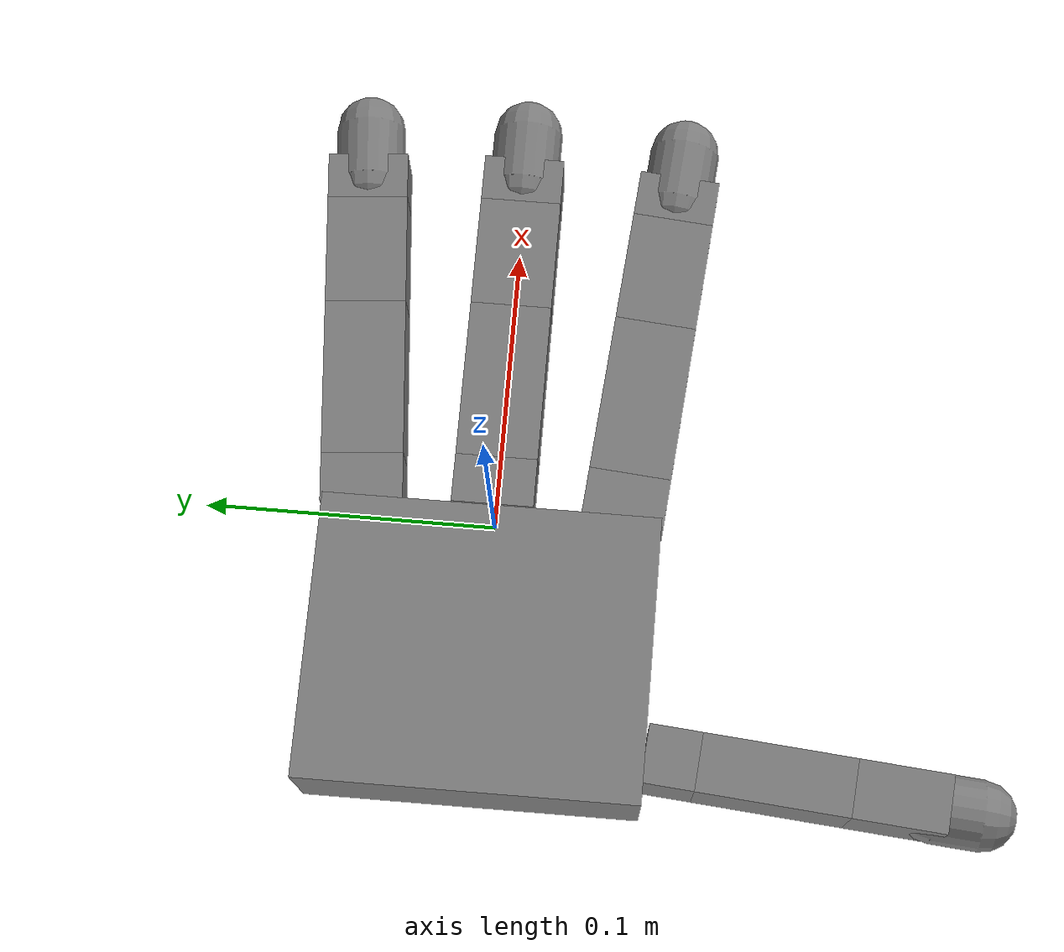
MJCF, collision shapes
<mujoco model="allegro_right">

  <compiler angle="radian" meshdir="../stls" texturedir="../textures"/>

  <default>
    <default class="allegro_right">
      <joint axis="0 1 0" damping=".1"/>
      <position kp="1"/>
      <geom density="800"/>

      <default class="visual">
        <geom type="mesh" contype="0" conaffinity="0" group="2" material="black"/>
        <default class="palm_visual">
          <geom mesh="base_link"/>
        </default>
        <default class="base_visual">
          <geom mesh="link_0.0"/>
        </default>
        <default class="proximal_visual">
          <geom mesh="link_1.0"/>
        </default>
        <default class="medial_visual">
          <geom mesh="link_2.0"/>
        </default>
        <default class="distal_visual">
          <geom mesh="link_3.0"/>
        </default>
        <default class="fingertip_visual">
          <geom pos="0 0 0.0267" material="white" mesh="link_3.0_tip"/>
        </default>
        <default class="thumbtip_visual">
          <geom pos="0 0 0.0423" material="white" mesh="link_15.0_tip"/>
        </default>
      </default>

      <default class="collision">
        <geom group="3" type="box" mass="0"/>
        <default class="palm_collision">
          <geom size="0.0204 0.0565 0.0475" pos="-0.0093 0 -0.0475"/>
        </default>
        <default class="base_collision">
          <geom size="0.0098 0.01375 0.0082" pos="0 0 0.0082"/>
          <default class="thumb_base_collision">
            <geom size="0.0179 0.017 0.02275" pos="-0.0179 0.009 0.0145"/>
          </default>
        </default>
        <default class="proximal_collision">
          <geom size="0.0098 0.01375 0.027" pos="0 0 0.027"/>
          <default class="thumb_proximal_collision">
            <geom size="0.0098 0.01375 0.00885" pos="0 0 0.00885"/>
          </default>
        </default>
        <default class="medial_collision">
          <geom size="0.0098 0.01375 0.0192" pos="0 0 0.0192"/>
          <default class="thumb_medial_collision">
            <geom size="0.0098 0.01375 0.0257" pos="0 0 0.0257"/>
          </default>
        </default>
        <default class="distal_collision">
          <geom size="0.0098 0.01375 0.008" pos="0 0 0.008"/>
          <default class="thumb_distal_collision">
            <geom size="0.0098 0.01375 0.0157" pos="0 0 0.0157"/>
          </default>
        </default>
        <default class="fingertip_collision">
          <geom type="capsule" size="0.012 0.01" pos="0 0 0.019"/>
          <default class="thumbtip_collision">
            <geom type="capsule" size="0.012 0.008" pos="0 0 0.035"/>
          </default>
        </default>
      </default>

      <default class="base">
        <joint axis="0 0 1" range="-0.47 0.47"/>
        <position ctrlrange="-0.47 0.47"/>
      </default>
      <default class="proximal">
        <joint range="-0.196 1.61"/>
        <position ctrlrange="-0.196 1.61"/>
      </default>
      <default class="medial">
        <joint range="-0.174 1.709"/>
        <position ctrlrange="-0.174 1.709"/>
      </default>
      <default class="distal">
        <joint range="-0.227 1.618"/>
        <position ctrlrange="-0.227 1.618"/>
      </default>
      <default class="thumb_base">
        <joint axis="-1 0 0" range="0.263 1.396"/>
        <position ctrlrange="0.263 1.396"/>
      </default>
      <default class="thumb_proximal">
        <joint axis="0 0 1" range="-0.105 1.163"/>
        <position ctrlrange="-0.105 1.163"/>
      </default>
      <default class="thumb_medial">
        <joint range="-0.189 1.644"/>
        <position ctrlrange="-0.189 1.644"/>
      </default>
      <default class="thumb_distal">
        <joint range="-0.162 1.719"/>
        <position ctrlrange="-0.162 1.719"/>
      </default>
    </default>
    <default class="touch">
        <site type="box" size="0.005 0.004 0.013" pos="0.01 -0.004 0.047" rgba="0.5 0.7 0.5 1"/>
    </default>
  </default>

  <asset>
    <material name="black" rgba="0.2 0.2 0.2 1"/>
    <material name="white" rgba="0.9 0.9 0.9 1"/>

    <mesh file="base_link.stl"/>
    <mesh file="link_0.0.stl"/>
    <mesh file="link_1.0.stl"/>
    <mesh file="link_2.0.stl"/>
    <mesh file="link_3.0.stl"/>
    <mesh file="link_3.0_tip.stl"/>
    <mesh file="link_12.0_right.stl"/>
    <mesh file="link_13.0.stl"/>
    <mesh file="link_14.0.stl"/>
    <mesh file="link_15.0.stl"/>
    <mesh file="link_15.0_tip.stl"/>
  </asset>

  <worldbody>
    <body name="palm" quat="0 1 0 1" childclass="allegro_right" pos="0 0 0.02" euler="1.55 0 0">
      <inertial mass="0.4154" pos="0 0 0.0475" diaginertia="1e-4 1e-4 1e-4"/>
      <joint name="robot:hand" type="slide" pos="0 0 0" axis="0 1 0" range="0 0.5" limited="true" damping="0.5" armature="0.005"></joint>
      <geom class="palm_visual" mesh="base_link"/>
      <geom class="palm_collision"/>
      <!-- First finger -->
      <body name="ff_base" pos="0 0.0435 -0.001542" quat="0.999048 -0.0436194 0 0">
        <joint name="ffj0" class="base"/>
        <geom class="base_visual"/>
        <geom class="base_collision" name="g111"/>
        <body name="ff_proximal" pos="0 0 0.0164">
          <joint name="ffj1" class="proximal"/>
          <geom class="proximal_visual"/>
          <geom class="proximal_collision" name="g112"/>
          <body name="ff_medial" pos="0 0 0.054">
            <joint name="ffj2" class="medial"/>
            <geom class="medial_visual"/>
            <geom class="medial_collision" name="g113"/>
            <body name="ff_distal" pos="0 0 0.0384">
              <joint name="ffj3" class="distal"/>
              <geom class="distal_visual"/>
              <geom class="distal_collision" name="g114"/>
              <body name="ff_tip">
                <geom class="fingertip_visual"/>
                <geom class="fingertip_collision" name="g115"/>
              </body>
            </body>
          </body>
        </body>
      </body>
      <!-- Middle finger -->
      <body name="mf_base" pos="0 0 0.0007">
        <joint name="mfj0" class="base"/>
        <geom class="base_visual"/>
        <geom class="base_collision" name="g121"/>
        <body name="mf_proximal" pos="0 0 0.0164">
          <joint name="mfj1" class="proximal"/>
          <geom class="proximal_visual"/>
          <geom class="proximal_collision" name="g122"/>
          <body name="mf_medial" pos="0 0 0.054">
            <joint name="mfj2" class="medial"/>
            <geom class="medial_visual"/>
            <geom class="medial_collision" name="g123"/>
            <body name="mf_distal" pos="0 0 0.0384">
              <joint name="mfj3" class="distal"/>
              <geom class="distal_visual"/>
              <geom class="distal_collision" name="g124"/>
              <body name="mf_tip">
                <geom class="fingertip_visual"/>
                <geom class="fingertip_collision" name="g125"/>
              </body>
            </body>
          </body>
        </body>
      </body>
      <!-- Ring finger -->
      <body name="rf_base" pos="0 -0.0435 -0.001542" quat="0.999048 0.0436194 0 0">
        <joint name="rfj0" class="base"/>
        <geom class="base_visual"/>
        <geom class="base_collision" name="g131"/>
        <body name="rf_proximal" pos="0 0 0.0164">
          <joint name="rfj1" class="proximal"/>
          <geom class="proximal_visual"/>
          <geom class="proximal_collision" name="g132"/>
          <body name="rf_medial" pos="0 0 0.054">
            <joint name="rfj2" class="medial"/>
            <geom class="medial_visual"/>
            <geom class="medial_collision" name="g133"/>
            <body name="rf_distal" pos="0 0 0.0384">
              <joint name="rfj3" class="distal"/>
              <geom class="distal_visual"/>
              <geom class="distal_collision" name="g134"/>
              <body name="rf_tip">
                <geom class="fingertip_visual"/>
                <geom class="fingertip_collision" name="g135"/>
              </body>
            </body>
          </body>
        </body>
      </body>
      <!-- Thumb -->
      <body name="th_base" pos="-0.0182 0.019333 -0.045987" quat="0.477714 -0.521334 -0.521334 -0.477714" euler="-1.6 1.5 -1.5">
        <joint name="thj0" class="thumb_base"/>
        <geom class="visual" mesh="link_12.0_right"/>
        <geom class="thumb_base_collision" name="g21"/>
        <body name="th_proximal" pos="-0.027 0.005 0.0399">
          <joint name="thj1" class="thumb_proximal"/>
          <geom class="visual" mesh="link_13.0"/>
          <geom class="thumb_proximal_collision" name="g22"/>
          <body name="th_medial" pos="0 0 0.0177">
            <joint name="thj2" class="thumb_medial"/>
            <geom class="visual" mesh="link_14.0"/>
            <geom class="thumb_medial_collision" name="g23"/>
            <body name="th_distal" pos="0 0 0.0514">
              <joint name="thj3" class="thumb_distal"/>
              <geom class="visual" mesh="link_15.0"/>
              <geom class="thumb_distal_collision" name="g24"/>
              <body name="th_tip">
                <geom class="thumbtip_visual"/>
                <geom class="thumbtip_collision" name="g25"/>
              </body>
            </body>
          </body>
        </body>
      </body>
    </body>
  </worldbody>

  <contact>
    <exclude body1="palm" body2="ff_base"/>
    <exclude body1="palm" body2="mf_base"/>
    <exclude body1="palm" body2="rf_base"/>
    <exclude body1="palm" body2="th_base"/>
    <exclude body1="palm" body2="th_proximal"/>
  </contact>

  <actuator>
    <position name="ffa0" joint="ffj0" class="base"/>                                       <!-- torque 0 -->
    <position name="ffa1" joint="ffj1" class="proximal" ctrllimited="true" ctrlrange="0 2"/>
    <position name="ffa2" joint="ffj2" class="medial" ctrllimited="true" ctrlrange="0 2"/>
    <position name="ffa3" joint="ffj3" class="distal" ctrllimited="true" ctrlrange="0 2"/>  <!-- torque 0 -->
    <position name="mfa0" joint="mfj0" class="base"/>                                       <!-- torque 0 -->
    <position name="mfa1" joint="mfj1" class="proximal" ctrllimited="true" ctrlrange="0 2"/>
    <position name="mfa2" joint="mfj2" class="medial" ctrllimited="true" ctrlrange="0 2"/>
    <position name="mfa3" joint="mfj3" class="distal" ctrllimited="true" ctrlrange="0 2"/>
    <position name="rfa0" joint="rfj0" class="base"/>                                       <!-- torque 0 -->
    <position name="rfa1" joint="rfj1" class="proximal" ctrllimited="true" ctrlrange="0 2"/>
    <position name="rfa2" joint="rfj2" class="medial" ctrllimited="true" ctrlrange="0 2"/>
    <position name="rfa3" joint="rfj3" class="distal" ctrllimited="true" ctrlrange="0 2"/>  <!-- torque 0 -->
    <position name="tha0" joint="thj0" class="thumb_base"/>  <!-- torque 0!!!! -->
    <position name="tha1" joint="thj1" class="thumb_proximal"/>                             <!-- torque 0 -->
    <position name="tha2" joint="thj2" class="thumb_medial" ctrllimited="true" ctrlrange="0 2"/>
    <position name="tha3" joint="thj3" class="thumb_distal" ctrllimited="true" ctrlrange="0 2"/>
  </actuator>
</mujoco>
